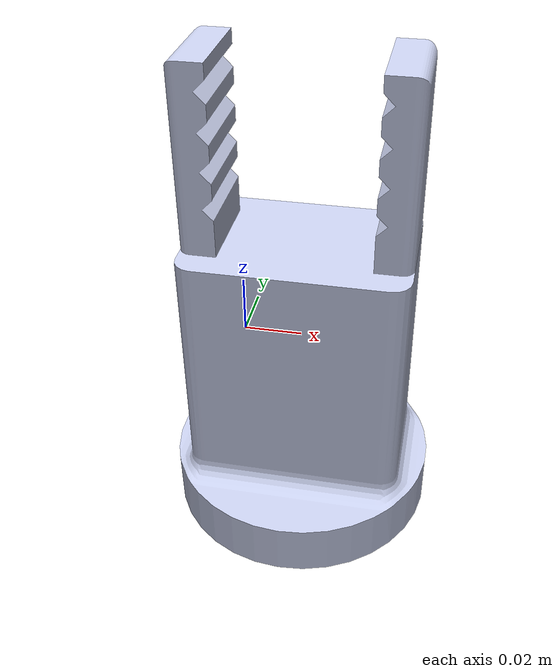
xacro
<?xml version="1.0" encoding="utf-8"?>
<robot name="gripper" xmlns:xacro="http://www.ros.org/wiki/xacro">
  <link name="gripper_body">
    <inertial>
      <origin xyz="0.030743 -0.052447 0.02264" rpy="0 0 0" />
      <mass value="1.23381" />
      <inertia
        ixx="0.00020083"
        ixy="3.1979E-11"
        ixz="-1.5744E-22"
        iyy="0.00022836"
        iyz="-7.5039E-21"
        izz="0.00011851" />
    </inertial>
    <visual>
      <origin
        xyz="0 0 0"
        rpy="0 0 0" />
      <geometry>
        <mesh
          filename="package://gripper_ur5/meshes/gripper_body.STL" />
      </geometry>
      <material
        name="">
        <color
          rgba="0.79216 0.81961 0.93333 1" />
      </material>
    </visual>
    <collision>
      <origin
        xyz="0 0 0"
        rpy="0 0 0" />
      <geometry>
        <mesh
          filename="package://gripper_ur5/meshes/gripper_body.STL" />
      </geometry>
    </collision>
  </link>
  <link
    name="finger_link1">
    <inertial>
      <origin
        xyz="-0.0055776 0.024687 9.7594E-11"
        rpy="0 0 0" />
      <mass
        value="0.41464" />
      <inertia
        ixx="3.0086E-06"
        ixy="6.4834E-09"
        ixz="3.2794E-13"
        iyy="6.6619E-07"
        iyz="2.6183E-13"
        izz="2.5138E-06" />
    </inertial>
    <visual>
      <origin
        xyz="0 0 0"
        rpy="0 0 0" />
      <geometry>
        <mesh
          filename="package://gripper_ur5/meshes/finger_link1.STL" />
      </geometry>
      <material
        name="">
        <color
          rgba="0.79216 0.81961 0.93333 1" />
      </material>
    </visual>
    <collision>
      <origin
        xyz="0 0 0"
        rpy="0 0 0" />
      <geometry>
        <mesh
          filename="package://gripper_ur5/meshes/finger_link1.STL" />
      </geometry>
    </collision>
  </link>
  <joint
    name="finger_joint1"
    type="prismatic">
    <origin
      xyz="0.050359 -0.052447 0.069837"
      rpy="1.5708 0 3.1416" />
    <parent
      link="gripper_body" />
    <child
      link="finger_link1" />
    <axis
      xyz="1 0 0" />
    <limit effort="100" lower="0.00" upper="0.02" velocity="0.1" />
    <dynamics damping="0.7"/>
  </joint>
  <link
    name="finger_link2">
    <inertial>
      <origin xyz="0.0051896 0.024687 9.7594E-11"
        rpy="0 0 0" />
      <mass
        value="0.41464" />
      <inertia
        ixx="3.0086E-06"
        ixy="6.4834E-09"
        ixz="3.2794E-13"
        iyy="6.6619E-07"
        iyz="2.6183E-13"
        izz="2.5138E-06" />
    </inertial>
    <visual>
      <origin
        xyz="0 0 0"
        rpy="0 0 0" />
      <geometry>
        <mesh
          filename="package://gripper_ur5/meshes/finger_link2.STL" />
      </geometry>
      <material
        name="">
        <color
          rgba="0.79216 0.81961 0.93333 1" />
      </material>
    </visual>
    <collision>
      <origin
        xyz="0 0 0"
        rpy="0 0 0" />
      <geometry>
        <mesh
          filename="package://gripper_ur5/meshes/finger_link2.STL" />
      </geometry>
    </collision>
  </link>
  <joint
    name="finger_joint2"
    type="prismatic">
    <origin
      xyz="0.00035895 -0.052447 0.069837"
      rpy="1.5708 0 0" />
    <parent
      link="gripper_body" />
    <child
      link="finger_link2" />
    <axis
      xyz="1 0 0" />
    <limit effort="100" lower="0.00" upper="0.02" velocity="0.1" />
    <dynamics damping="0.7"/>
  </joint>

  <gazebo reference="finger_link2">
    <kp>1000000.0</kp>
    <kd>100.0</kd>
    <mu1>1.0</mu1>
    <mu2>1.0</mu2>
    <maxVel>0</maxVel>
    <minDepth>0.1</minDepth>
  </gazebo>

  <gazebo reference="finger_link1">
    <kp>1000000.0</kp>
    <kd>100.0</kd>
    <mu1>1.0</mu1>
    <mu2>1.0</mu2>
    <maxVel>0</maxVel>
    <minDepth>0.1</minDepth>
  </gazebo>

    <transmission name="finger1_trans">
        <type>transmission_interface/SimpleTransmission</type>
        <joint name="finger_joint1">
        <hardwareInterface>hardware_interface/EffortJointInterface</hardwareInterface>
        </joint>
        <actuator name="motor1">
        <hardwareInterface>hardware_interface/EffortJointInterface</hardwareInterface>
        <mechanicalReduction>1</mechanicalReduction>
        </actuator>
    </transmission>

    <transmission name="finger2_trans">
        <type>transmission_interface/SimpleTransmission</type>
        <joint name="finger_joint2">
        <hardwareInterface>hardware_interface/EffortJointInterface</hardwareInterface>
        </joint>
        <actuator name="motor2">
        <hardwareInterface>hardware_interface/EffortJointInterface</hardwareInterface>
        <mechanicalReduction>1</mechanicalReduction>
        </actuator>
    </transmission>

  <gazebo reference="gripper_body">
   <material>Gazebo/DarkGrey</material>
  </gazebo>
  <gazebo reference="finger_link1">
   <material>Gazebo/DarkGrey</material>
  </gazebo>
  <gazebo reference="finger_link2">
   <material>Gazebo/DarkGrey</material>
  </gazebo>

</robot>
